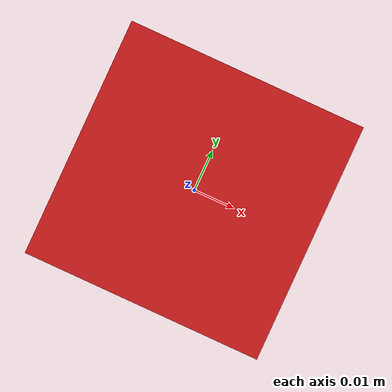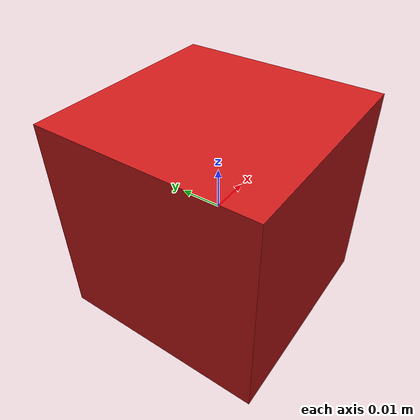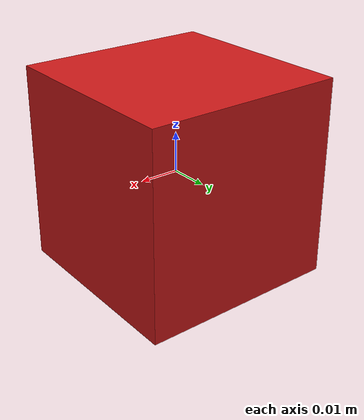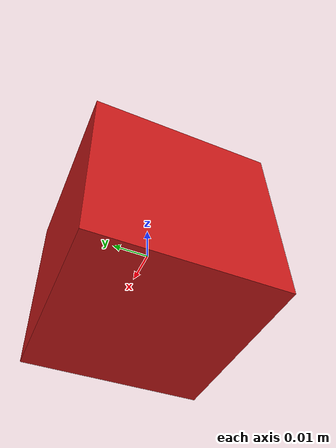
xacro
<?xml version="1.0"?>

<robot xmlns:xacro="http://ros.org/wiki/xacro" name="cube">

  <!-- ==================== PARAMETERS ==================== -->

  <!-- Object name - used for link names and Gazebo plugin -->
  <xacro:arg name="name" default="cube"/>

  <!-- Cube dimensions (meters) - side length -->
  <xacro:arg name="size" default="0.05"/>

  <!-- Mass (kg) -->
  <xacro:arg name="mass" default="0.1"/>

  <!-- Color selection -->
  <xacro:arg name="color" default="red"/>

  <!-- ==================== COMPUTED PROPERTIES ==================== -->

  <xacro:property name="obj_name" value="$(arg name)"/>
  <xacro:property name="obj_size" value="$(arg size)"/>
  <xacro:property name="obj_mass" value="$(arg mass)"/>
  <xacro:property name="obj_color" value="$(arg color)"/>

  <!-- Inertia for a solid cube: I = (1/6) * m * s^2 -->
  <!-- For a uniform cube: Ixx = Iyy = Izz = (1/6) * m * s^2 -->
  <xacro:property name="inertia_val" value="${(1.0/6.0) * obj_mass * obj_size * obj_size}"/>

  <!-- ==================== COLOR MATERIALS ==================== -->

  <material name="red">
    <color rgba="0.8 0.1 0.1 1.0"/>
  </material>

  <material name="green">
    <color rgba="0.1 0.8 0.1 1.0"/>
  </material>

  <material name="blue">
    <color rgba="0.1 0.1 0.8 1.0"/>
  </material>

  <material name="yellow">
    <color rgba="0.9 0.9 0.1 1.0"/>
  </material>

  <material name="orange">
    <color rgba="1.0 0.5 0.0 1.0"/>
  </material>

  <material name="purple">
    <color rgba="0.6 0.1 0.8 1.0"/>
  </material>

  <material name="white">
    <color rgba="0.95 0.95 0.95 1.0"/>
  </material>

  <material name="black">
    <color rgba="0.1 0.1 0.1 1.0"/>
  </material>

  <material name="grey">
    <color rgba="0.5 0.5 0.5 1.0"/>
  </material>

  <!-- ==================== LINK DEFINITION ==================== -->

  <link name="${obj_name}">

    <!-- Visual geometry -->
    <visual>
      <origin xyz="0 0 0" rpy="0 0 0"/>
      <geometry>
        <box size="${obj_size} ${obj_size} ${obj_size}"/>
      </geometry>
      <material name="${obj_color}"/>
    </visual>

    <!-- Collision geometry -->
    <collision>
      <origin xyz="0 0 0" rpy="0 0 0"/>
      <geometry>
        <box size="${obj_size} ${obj_size} ${obj_size}"/>
      </geometry>
    </collision>

    <!-- Inertial properties -->
    <inertial>
      <origin xyz="0 0 0" rpy="0 0 0"/>
      <mass value="${obj_mass}"/>
      <inertia
        ixx="${inertia_val}" ixy="0.0" ixz="0.0"
        iyy="${inertia_val}" iyz="0.0"
        izz="${inertia_val}"/>
    </inertial>

  </link>

  <!-- ==================== GAZEBO PROPERTIES ==================== -->

  <!-- Gazebo material colors (Gazebo Classic uses different color system) -->
  <xacro:if value="${obj_color == 'red'}">
    <gazebo reference="${obj_name}">
      <material>Gazebo/Red</material>
    </gazebo>
  </xacro:if>

  <xacro:if value="${obj_color == 'green'}">
    <gazebo reference="${obj_name}">
      <material>Gazebo/Green</material>
    </gazebo>
  </xacro:if>

  <xacro:if value="${obj_color == 'blue'}">
    <gazebo reference="${obj_name}">
      <material>Gazebo/Blue</material>
    </gazebo>
  </xacro:if>

  <xacro:if value="${obj_color == 'yellow'}">
    <gazebo reference="${obj_name}">
      <material>Gazebo/Yellow</material>
    </gazebo>
  </xacro:if>

  <xacro:if value="${obj_color == 'orange'}">
    <gazebo reference="${obj_name}">
      <material>Gazebo/Orange</material>
    </gazebo>
  </xacro:if>

  <xacro:if value="${obj_color == 'purple'}">
    <gazebo reference="${obj_name}">
      <material>Gazebo/Purple</material>
    </gazebo>
  </xacro:if>

  <xacro:if value="${obj_color == 'white'}">
    <gazebo reference="${obj_name}">
      <material>Gazebo/White</material>
    </gazebo>
  </xacro:if>

  <xacro:if value="${obj_color == 'black'}">
    <gazebo reference="${obj_name}">
      <material>Gazebo/Black</material>
    </gazebo>
  </xacro:if>

  <xacro:if value="${obj_color == 'grey'}">
    <gazebo reference="${obj_name}">
      <material>Gazebo/Grey</material>
    </gazebo>
  </xacro:if>

  <!-- Gazebo physics properties for rubber-like cube behavior -->
  <!-- High friction, no bounce, increased damping for stable grasping -->
  <gazebo reference="${obj_name}">
    <mu1>6.0</mu1>
    <mu2>6.0</mu2>
    <kp>1000000.0</kp>
    <kd>5000.0</kd>
    <minDepth>0.001</minDepth>
    <maxVel>0.1</maxVel>
    <selfCollide>false</selfCollide>
    <dampingFactor>0.3</dampingFactor>
    <restitution>0.0</restitution>
  </gazebo>

  <!-- ==================== GAZEBO PLUGINS ==================== -->

  <!-- Ground truth pose publisher -->
  <gazebo>
    <plugin name="p3d_${obj_name}" filename="libgazebo_ros_p3d.so">
      <ros>
        <namespace>/</namespace>
        <remapping>odom:=object_poses/${obj_name}</remapping>
      </ros>
      <body_name>${obj_name}</body_name>
      <frame_name>world</frame_name>
      <update_rate>30.0</update_rate>
      <xyz_offset>0 0 0</xyz_offset>
      <rpy_offset>0 0 0</rpy_offset>
      <gaussian_noise>0.0</gaussian_noise>
    </plugin>
  </gazebo>

</robot>
